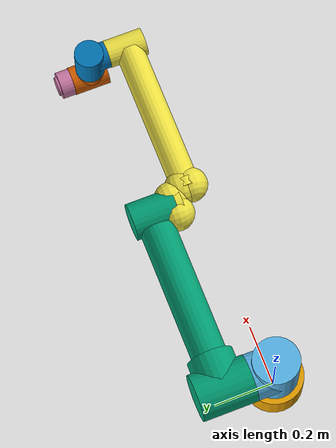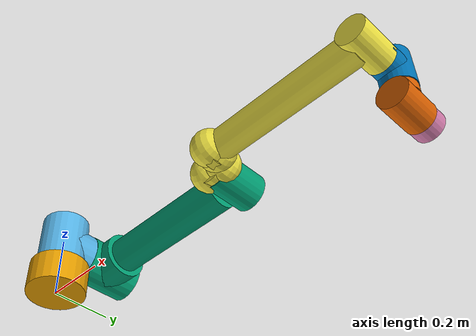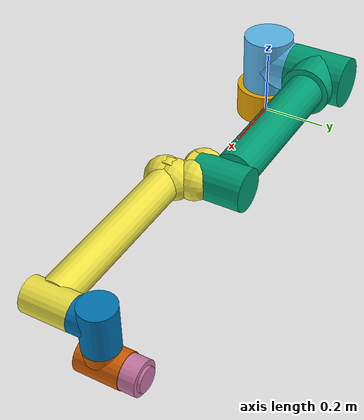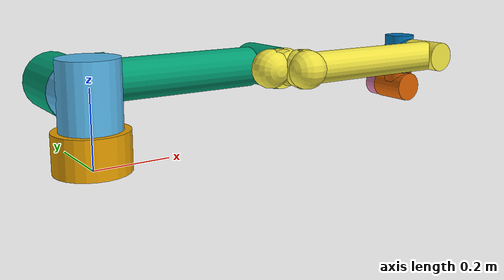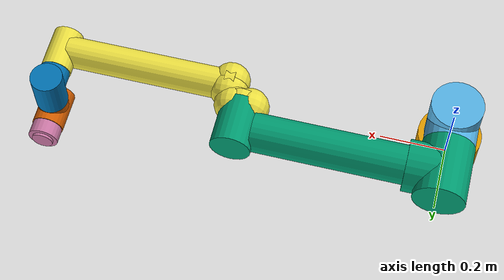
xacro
<?xml version="1.0" ?>
<robot name="/home/diogo/ros_workspaces/rihibot_ws/src/robots/rihibot/rihibot_description/urdf/UR10e_test.urdf" version="1.0">
  <link name="base_link">
    <visual>
      <origin xyz="0.0 0.0 0.05" rpy="-3.141592 0.0 0.0"/>
      <geometry>
        <cylinder radius="0.095" length="0.1"/>
      </geometry>
    </visual>
    <collision>
      <origin xyz="0.0 0.0 0.05" rpy="-3.141592 0.0 0.0"/>
      <geometry>
        <cylinder radius="0.095" length="0.1"/>
      </geometry>
    </collision>
  </link>
  <joint name="shoulder_pan_joint" type="revolute">
    <origin xyz="0.0 0.0 0.181" rpy="0.0 0.0 0.0"/>
    <axis xyz="0.0 0.0 1.0"/>
    <parent link="base_link"/>
    <child link="shoulder_link"/>
    <limit effort="330.0" lower="-6.28319" upper="6.28319" velocity="3.14"/>
  </joint>
  <link name="shoulder_link">
    <visual>
      <origin xyz="0.0 0.0 0.0" rpy="-3.141592 0.0 0.0"/>
      <geometry>
        <cylinder radius="0.077" length="0.183"/>
      </geometry>
    </visual>
    <collision>
      <origin xyz="0.0 0.0 0.0" rpy="-3.141592 0.0 0.0"/>
      <geometry>
        <cylinder radius="0.077" length="0.183"/>
      </geometry>
    </collision>
    <visual>
      <origin xyz="0.0 0.05 0.0" rpy="1.570797 0.0 0.0"/>
      <geometry>
        <cylinder radius="0.076" length="0.093"/>
      </geometry>
    </visual>
    <collision>
      <origin xyz="0.0 0.05 0.0" rpy="1.570797 0.0 0.0"/>
      <geometry>
        <cylinder radius="0.076" length="0.093"/>
      </geometry>
    </collision>
  </link>
  <joint name="shoulder_lift_joint" type="revolute">
    <origin xyz="0.0 0.176 0.0" rpy="0.0 1.570796 0.0"/>
    <axis xyz="0.0 1.0 0.0"/>
    <parent link="shoulder_link"/>
    <child link="upper_arm_link"/>
    <limit effort="330.0" lower="-6.28319" upper="6.28319" velocity="3.14"/>
  </joint>
  <link name="upper_arm_link">
    <visual>
      <origin xyz="0.0 0.0 0.33" rpy="-3.141592 0.0 0.0"/>
      <geometry>
        <cylinder radius="0.058" length="0.463"/>
      </geometry>
    </visual>
    <collision>
      <origin xyz="0.0 0.0 0.33" rpy="-3.141592 0.0 0.0"/>
      <geometry>
        <cylinder radius="0.058" length="0.463"/>
      </geometry>
    </collision>
    <visual>
      <origin xyz="0.0 0.0 0.06" rpy="-3.141592 0.0 0.0"/>
      <geometry>
        <cylinder radius="0.076" length="0.1"/>
      </geometry>
    </visual>
    <collision>
      <origin xyz="0.0 0.0 0.06" rpy="-3.141592 0.0 0.0"/>
      <geometry>
        <cylinder radius="0.076" length="0.1"/>
      </geometry>
    </collision>
    <visual>
      <origin xyz="0.0 0.0 0.0" rpy="-1.570796 0.0 0.0"/>
      <geometry>
        <cylinder radius="0.077" length="0.183"/>
      </geometry>
    </visual>
    <collision>
      <origin xyz="0.0 0.0 0.0" rpy="-1.570796 0.0 0.0"/>
      <geometry>
        <cylinder radius="0.077" length="0.183"/>
      </geometry>
    </collision>
    <visual>
      <origin xyz="0.0 -0.005 0.612" rpy="-1.570796 0.0 0.0"/>
      <geometry>
        <cylinder radius="0.061" length="0.149"/>
      </geometry>
    </visual>
    <collision>
      <origin xyz="0.0 -0.005 0.612" rpy="-1.570796 0.0 0.0"/>
      <geometry>
        <cylinder radius="0.061" length="0.149"/>
      </geometry>
    </collision>
  </link>
  <joint name="elbow_joint" type="revolute">
    <origin xyz="0.0 -0.137 0.613" rpy="0.0 0.0 0.0"/>
    <axis xyz="0.0 1.0 0.0"/>
    <parent link="upper_arm_link"/>
    <child link="forearm_link"/>
    <limit effort="150.0" lower="-3.14159" upper="3.14159" velocity="3.14"/>
  </joint>
  <link name="forearm_link">
    <visual>
      <origin xyz="0.0 0.0 0.307" rpy="-3.141592 0.0 0.0"/>
      <geometry>
        <cylinder radius="0.047" length="0.49"/>
      </geometry>
    </visual>
    <collision>
      <origin xyz="0.0 0.0 0.307" rpy="-3.141592 0.0 0.0"/>
      <geometry>
        <cylinder radius="0.047" length="0.49"/>
      </geometry>
    </collision>
    <visual>
      <origin xyz="0.0 0.009 0.57" rpy="-1.570796 0.0 0.0"/>
      <geometry>
        <cylinder radius="0.046" length="0.129"/>
      </geometry>
    </visual>
    <collision>
      <origin xyz="0.0 0.009 0.57" rpy="-1.570796 0.0 0.0"/>
      <geometry>
        <cylinder radius="0.046" length="0.129"/>
      </geometry>
    </collision>
    <visual>
      <origin xyz="0.0 0.06 0.0" rpy="-1.570796 0.0 0.0"/>
      <geometry>
        <cylinder radius="0.058" length="0.05"/>
      </geometry>
    </visual>
    <collision>
      <origin xyz="0.0 0.06 0.0" rpy="-1.570796 0.0 0.0"/>
      <geometry>
        <cylinder radius="0.058" length="0.05"/>
      </geometry>
    </collision>
    <visual>
      <origin xyz="0.0 0.06 -0.025" rpy="-1.570796 0.0 0.0"/>
      <geometry>
        <sphere radius="0.058"/>
      </geometry>
    </visual>
    <collision>
      <origin xyz="0.0 0.06 -0.025" rpy="-1.570796 0.0 0.0"/>
      <geometry>
        <sphere radius="0.058"/>
      </geometry>
    </collision>
    <visual>
      <origin xyz="0.0 0.06 0.025" rpy="-1.570796 0.0 0.0"/>
      <geometry>
        <sphere radius="0.058"/>
      </geometry>
    </visual>
    <collision>
      <origin xyz="0.0 0.06 0.025" rpy="-1.570796 0.0 0.0"/>
      <geometry>
        <sphere radius="0.058"/>
      </geometry>
    </collision>
    <visual>
      <origin xyz="0.0 0.0 0.05" rpy="0.0 0.0 0.0"/>
      <geometry>
        <cylinder radius="0.057" length="0.03"/>
      </geometry>
    </visual>
    <collision>
      <origin xyz="0.0 0.0 0.05" rpy="0.0 0.0 0.0"/>
      <geometry>
        <cylinder radius="0.057" length="0.03"/>
      </geometry>
    </collision>
    <visual>
      <origin xyz="0.0 0.015 0.05" rpy="0.0 0.0 0.0"/>
      <geometry>
        <sphere radius="0.057"/>
      </geometry>
    </visual>
    <collision>
      <origin xyz="0.0 0.015 0.05" rpy="0.0 0.0 0.0"/>
      <geometry>
        <sphere radius="0.057"/>
      </geometry>
    </collision>
    <visual>
      <origin xyz="0.0 -0.015 0.05" rpy="0.0 0.0 0.0"/>
      <geometry>
        <sphere radius="0.057"/>
      </geometry>
    </visual>
    <collision>
      <origin xyz="0.0 -0.015 0.05" rpy="0.0 0.0 0.0"/>
      <geometry>
        <sphere radius="0.057"/>
      </geometry>
    </collision>
  </link>
  <joint name="wrist_1_joint" type="revolute">
    <origin xyz="0.0 0.0 0.571" rpy="0.0 1.570796 0.0"/>
    <axis xyz="0.0 1.0 0.0"/>
    <parent link="forearm_link"/>
    <child link="wrist_1_link"/>
    <limit effort="54.0" lower="-6.28319" upper="6.28319" velocity="6.28"/>
  </joint>
  <link name="wrist_1_link">
    <visual>
      <origin xyz="0.0 0.095 0.0" rpy="-1.570796 0.0 0.0"/>
      <geometry>
        <cylinder radius="0.045" length="0.075"/>
      </geometry>
    </visual>
    <collision>
      <origin xyz="0.0 0.095 0.0" rpy="-1.570796 0.0 0.0"/>
      <geometry>
        <cylinder radius="0.045" length="0.075"/>
      </geometry>
    </collision>
    <visual>
      <origin xyz="0.0 0.134 0.007" rpy="-3.141592 0.0 0.0"/>
      <geometry>
        <cylinder radius="0.048" length="0.126"/>
      </geometry>
    </visual>
    <collision>
      <origin xyz="0.0 0.134 0.007" rpy="-3.141592 0.0 0.0"/>
      <geometry>
        <cylinder radius="0.048" length="0.126"/>
      </geometry>
    </collision>
  </link>
  <joint name="wrist_2_joint" type="revolute">
    <origin xyz="0.0 0.135 0.0" rpy="0.0 0.0 0.0"/>
    <axis xyz="0.0 0.0 1.0"/>
    <parent link="wrist_1_link"/>
    <child link="wrist_2_link"/>
    <limit effort="54.0" lower="-6.28319" upper="6.28319" velocity="6.28"/>
  </joint>
  <link name="wrist_2_link">
    <visual>
      <origin xyz="0.0 0.007 0.1195" rpy="-1.570796 0.0 0.0"/>
      <geometry>
        <cylinder radius="0.047" length="0.12"/>
      </geometry>
    </visual>
    <collision>
      <origin xyz="0.0 0.007 0.1195" rpy="-1.570796 0.0 0.0"/>
      <geometry>
        <cylinder radius="0.047" length="0.12"/>
      </geometry>
    </collision>
    <visual>
      <origin xyz="0.0 0.0 0.0805" rpy="-3.141592 0.0 0.0"/>
      <geometry>
        <cylinder radius="0.046" length="0.043"/>
      </geometry>
    </visual>
    <collision>
      <origin xyz="0.0 0.0 0.0805" rpy="-3.141592 0.0 0.0"/>
      <geometry>
        <cylinder radius="0.046" length="0.043"/>
      </geometry>
    </collision>
  </link>
  <joint name="wrist_3_joint" type="revolute">
    <origin xyz="0.0 0.0 0.12" rpy="0.0 0.0 0.0"/>
    <axis xyz="0.0 1.0 0.0"/>
    <parent link="wrist_2_link"/>
    <child link="wrist_3_link"/>
    <limit effort="54.0" lower="-6.28319" upper="6.28319" velocity="6.28"/>
  </joint>
  <link name="wrist_3_link">
    <visual>
      <origin xyz="0.0 0.086 0.0" rpy="-1.570796 0.0 0.0"/>
      <geometry>
        <cylinder radius="0.045" length="0.048"/>
      </geometry>
    </visual>
    <collision>
      <origin xyz="0.0 0.086 0.0" rpy="-1.570796 0.0 0.0"/>
      <geometry>
        <cylinder radius="0.045" length="0.048"/>
      </geometry>
    </collision>
    <visual>
      <origin xyz="0.0 0.109 0.0" rpy="-1.570796 0.0 0.0"/>
      <geometry>
        <cylinder radius="0.032" length="0.018"/>
      </geometry>
    </visual>
    <collision>
      <origin xyz="0.0 0.109 0.0" rpy="-1.570796 0.0 0.0"/>
      <geometry>
        <cylinder radius="0.032" length="0.018"/>
      </geometry>
    </collision>
  </link>
  <link name="gyro"/>
  <joint name="wrist_3_link_gyro_joint" type="fixed">
    <origin xyz="0.0 0.13 0.02" rpy="0.0 0.0 0.0"/>
    <parent link="wrist_3_link"/>
    <child link="gyro"/>
  </joint>
  <link name="accelerometer"/>
  <joint name="wrist_3_link_accelerometer_joint" type="fixed">
    <origin xyz="-0.00030499984996082825 0.1326974524373059 0.02009591309795699" rpy="-0.00010506240361292751 -4.9121201176679644e-05 1.0526790810606028e-05"/>
    <parent link="wrist_3_link"/>
    <child link="accelerometer"/>
  </joint>
  <link name="hand_rgb"/>
  <joint name="wrist_3_link_hand_rgb_joint" type="fixed">
    <origin xyz="0.0 0.13 -0.02" rpy="1.570794 2e-06 4e-06"/>
    <parent link="wrist_3_link"/>
    <child link="hand_rgb"/>
  </joint>
</robot>
